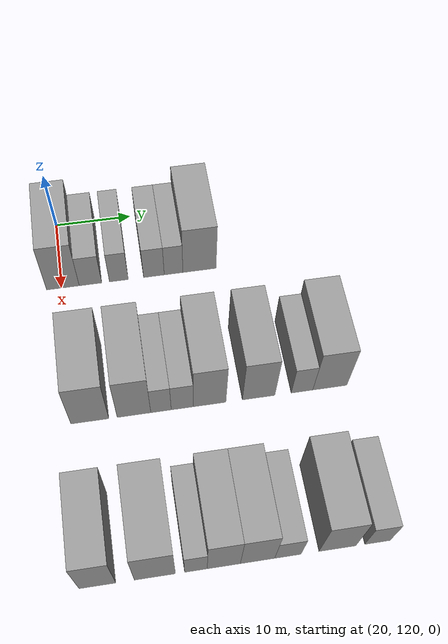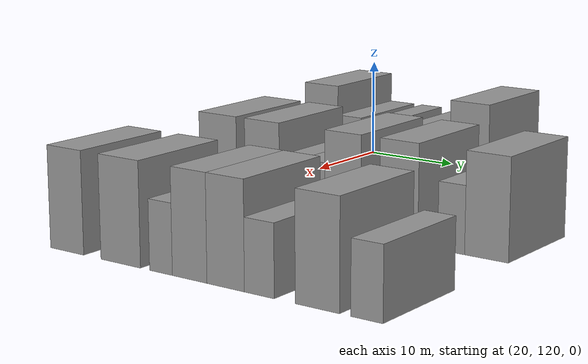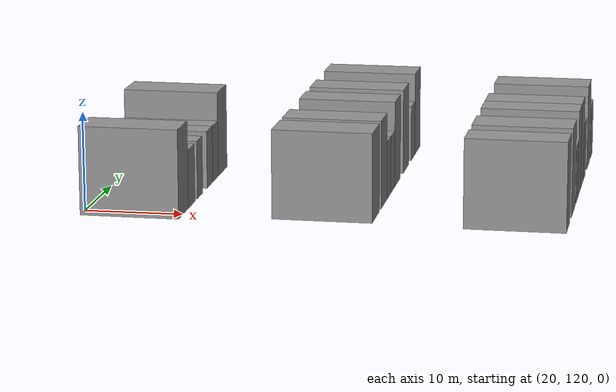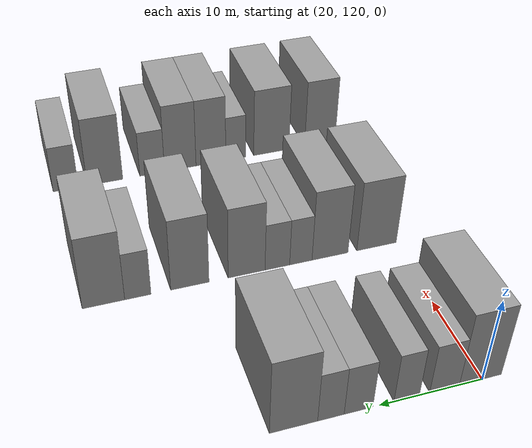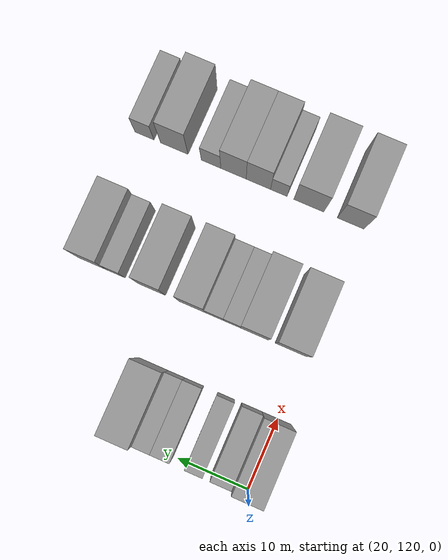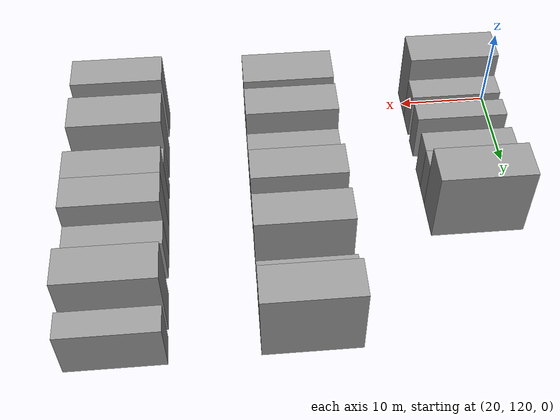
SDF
<sdf version="1.6">
 <world name="default">
  <model name="building_90">
   <static>1</static>
   <pose>25.0000 120.1816 0 0.000000 0.000000 0.000000</pose>
   <link name="link">
    <pose>0 0 4.50 0 0 0</pose>
    <collision name="collision"><geometry><box><size>10.0000 4.1920 9.0000</size></box></geometry></collision>
    <visual name="visual">
     <cast_shadows>0</cast_shadows>
     <geometry><box><size>10.0000 4.1920 9.0000</size></box></geometry>
     <material>
      <script>
       <uri>model://grey_wall/materials/scripts</uri>
       <uri>model://grey_wall/materials/textures</uri>
       <name>vrc/grey_wall</name>
      </script>
     </material>
    </visual>
   </link>
  </model>
  <model name="building_91">
   <static>1</static>
   <pose>25.0000 123.7352 0 0.000000 0.000000 0.000000</pose>
   <link name="link">
    <pose>0 0 3.00 0 0 0</pose>
    <collision name="collision"><geometry><box><size>10.0000 2.9152 6.0000</size></box></geometry></collision>
    <visual name="visual">
     <cast_shadows>0</cast_shadows>
     <geometry><box><size>10.0000 2.9152 6.0000</size></box></geometry>
     <material>
      <script>
       <uri>model://grey_wall/materials/scripts</uri>
       <uri>model://grey_wall/materials/textures</uri>
       <name>vrc/grey_wall</name>
      </script>
     </material>
    </visual>
   </link>
  </model>
  <model name="building_92">
   <static>1</static>
   <pose>25.0000 127.4188 0 0.000000 0.000000 0.000000</pose>
   <link name="link">
    <pose>0 0 3.00 0 0 0</pose>
    <collision name="collision"><geometry><box><size>10.0000 2.4520 6.0000</size></box></geometry></collision>
    <visual name="visual">
     <cast_shadows>0</cast_shadows>
     <geometry><box><size>10.0000 2.4520 6.0000</size></box></geometry>
     <material>
      <script>
       <uri>model://grey_wall/materials/scripts</uri>
       <uri>model://grey_wall/materials/textures</uri>
       <name>vrc/grey_wall</name>
      </script>
     </material>
    </visual>
   </link>
  </model>
  <model name="building_93">
   <static>1</static>
   <pose>25.0000 131.9946 0 0.000000 0.000000 0.000000</pose>
   <link name="link">
    <pose>0 0 3.00 0 0 0</pose>
    <collision name="collision"><geometry><box><size>10.0000 2.6996 6.0000</size></box></geometry></collision>
    <visual name="visual">
     <cast_shadows>0</cast_shadows>
     <geometry><box><size>10.0000 2.6996 6.0000</size></box></geometry>
     <material>
      <script>
       <uri>model://grey_wall/materials/scripts</uri>
       <uri>model://grey_wall/materials/textures</uri>
       <name>vrc/grey_wall</name>
      </script>
     </material>
    </visual>
   </link>
  </model>
  <model name="building_94">
   <static>1</static>
   <pose>25.0000 134.5674 0 0.000000 0.000000 0.000000</pose>
   <link name="link">
    <pose>0 0 3.00 0 0 0</pose>
    <collision name="collision"><geometry><box><size>10.0000 2.4461 6.0000</size></box></geometry></collision>
    <visual name="visual">
     <cast_shadows>0</cast_shadows>
     <geometry><box><size>10.0000 2.4461 6.0000</size></box></geometry>
     <material>
      <script>
       <uri>model://grey_wall/materials/scripts</uri>
       <uri>model://grey_wall/materials/textures</uri>
       <name>vrc/grey_wall</name>
      </script>
     </material>
    </visual>
   </link>
  </model>
  <model name="building_95">
   <static>1</static>
   <pose>25.0000 137.9759 0 0.000000 0.000000 0.000000</pose>
   <link name="link">
    <pose>0 0 4.50 0 0 0</pose>
    <collision name="collision"><geometry><box><size>10.0000 4.3709 9.0000</size></box></geometry></collision>
    <visual name="visual">
     <cast_shadows>0</cast_shadows>
     <geometry><box><size>10.0000 4.3709 9.0000</size></box></geometry>
     <material>
      <script>
       <uri>model://grey_wall/materials/scripts</uri>
       <uri>model://grey_wall/materials/textures</uri>
       <name>vrc/grey_wall</name>
      </script>
     </material>
    </visual>
   </link>
  </model>
  <model name="building_202">
   <static>1</static>
   <pose>44.0000 121.9959 0 0.000000 0.000000 0.000000</pose>
   <link name="link">
    <pose>0 0 4.50 0 0 0</pose>
    <collision name="collision"><geometry><box><size>10.0000 4.4814 9.0000</size></box></geometry></collision>
    <visual name="visual">
     <cast_shadows>0</cast_shadows>
     <geometry><box><size>10.0000 4.4814 9.0000</size></box></geometry>
     <material>
      <script>
       <uri>model://grey_wall/materials/scripts</uri>
       <uri>model://grey_wall/materials/textures</uri>
       <name>vrc/grey_wall</name>
      </script>
     </material>
    </visual>
   </link>
  </model>
  <model name="building_203">
   <static>1</static>
   <pose>44.0000 127.2355 0 0.000000 0.000000 0.000000</pose>
   <link name="link">
    <pose>0 0 4.50 0 0 0</pose>
    <collision name="collision"><geometry><box><size>10.0000 3.9977 9.0000</size></box></geometry></collision>
    <visual name="visual">
     <cast_shadows>0</cast_shadows>
     <geometry><box><size>10.0000 3.9977 9.0000</size></box></geometry>
     <material>
      <script>
       <uri>model://grey_wall/materials/scripts</uri>
       <uri>model://grey_wall/materials/textures</uri>
       <name>vrc/grey_wall</name>
      </script>
     </material>
    </visual>
   </link>
  </model>
  <model name="building_204">
   <static>1</static>
   <pose>44.0000 130.4550 0 0.000000 0.000000 0.000000</pose>
   <link name="link">
    <pose>0 0 3.00 0 0 0</pose>
    <collision name="collision"><geometry><box><size>10.0000 2.4414 6.0000</size></box></geometry></collision>
    <visual name="visual">
     <cast_shadows>0</cast_shadows>
     <geometry><box><size>10.0000 2.4414 6.0000</size></box></geometry>
     <material>
      <script>
       <uri>model://grey_wall/materials/scripts</uri>
       <uri>model://grey_wall/materials/textures</uri>
       <name>vrc/grey_wall</name>
      </script>
     </material>
    </visual>
   </link>
  </model>
  <model name="building_205">
   <static>1</static>
   <pose>44.0000 133.0089 0 0.000000 0.000000 0.000000</pose>
   <link name="link">
    <pose>0 0 3.00 0 0 0</pose>
    <collision name="collision"><geometry><box><size>10.0000 2.6664 6.0000</size></box></geometry></collision>
    <visual name="visual">
     <cast_shadows>0</cast_shadows>
     <geometry><box><size>10.0000 2.6664 6.0000</size></box></geometry>
     <material>
      <script>
       <uri>model://grey_wall/materials/scripts</uri>
       <uri>model://grey_wall/materials/textures</uri>
       <name>vrc/grey_wall</name>
      </script>
     </material>
    </visual>
   </link>
  </model>
  <model name="building_206">
   <static>1</static>
   <pose>44.0000 136.3009 0 0.000000 0.000000 0.000000</pose>
   <link name="link">
    <pose>0 0 4.50 0 0 0</pose>
    <collision name="collision"><geometry><box><size>10.0000 3.9175 9.0000</size></box></geometry></collision>
    <visual name="visual">
     <cast_shadows>0</cast_shadows>
     <geometry><box><size>10.0000 3.9175 9.0000</size></box></geometry>
     <material>
      <script>
       <uri>model://grey_wall/materials/scripts</uri>
       <uri>model://grey_wall/materials/textures</uri>
       <name>vrc/grey_wall</name>
      </script>
     </material>
    </visual>
   </link>
  </model>
  <model name="building_207">
   <static>1</static>
   <pose>44.0000 142.2390 0 0.000000 0.000000 0.000000</pose>
   <link name="link">
    <pose>0 0 4.50 0 0 0</pose>
    <collision name="collision"><geometry><box><size>10.0000 3.9587 9.0000</size></box></geometry></collision>
    <visual name="visual">
     <cast_shadows>0</cast_shadows>
     <geometry><box><size>10.0000 3.9587 9.0000</size></box></geometry>
     <material>
      <script>
       <uri>model://grey_wall/materials/scripts</uri>
       <uri>model://grey_wall/materials/textures</uri>
       <name>vrc/grey_wall</name>
      </script>
     </material>
    </visual>
   </link>
  </model>
  <model name="building_208">
   <static>1</static>
   <pose>44.0000 147.5408 0 0.000000 0.000000 0.000000</pose>
   <link name="link">
    <pose>0 0 3.00 0 0 0</pose>
    <collision name="collision"><geometry><box><size>10.0000 2.6449 6.0000</size></box></geometry></collision>
    <visual name="visual">
     <cast_shadows>0</cast_shadows>
     <geometry><box><size>10.0000 2.6449 6.0000</size></box></geometry>
     <material>
      <script>
       <uri>model://grey_wall/materials/scripts</uri>
       <uri>model://grey_wall/materials/textures</uri>
       <name>vrc/grey_wall</name>
      </script>
     </material>
    </visual>
   </link>
  </model>
  <model name="building_209">
   <static>1</static>
   <pose>44.0000 150.9653 0 0.000000 0.000000 0.000000</pose>
   <link name="link">
    <pose>0 0 4.50 0 0 0</pose>
    <collision name="collision"><geometry><box><size>10.0000 4.2041 9.0000</size></box></geometry></collision>
    <visual name="visual">
     <cast_shadows>0</cast_shadows>
     <geometry><box><size>10.0000 4.2041 9.0000</size></box></geometry>
     <material>
      <script>
       <uri>model://grey_wall/materials/scripts</uri>
       <uri>model://grey_wall/materials/textures</uri>
       <name>vrc/grey_wall</name>
      </script>
     </material>
    </visual>
   </link>
  </model>
  <model name="building_321">
   <static>1</static>
   <pose>63.0000 121.1453 0 0.000000 0.000000 0.000000</pose>
   <link name="link">
    <pose>0 0 4.50 0 0 0</pose>
    <collision name="collision"><geometry><box><size>10.0000 3.9242 9.0000</size></box></geometry></collision>
    <visual name="visual">
     <cast_shadows>0</cast_shadows>
     <geometry><box><size>10.0000 3.9242 9.0000</size></box></geometry>
     <material>
      <script>
       <uri>model://grey_wall/materials/scripts</uri>
       <uri>model://grey_wall/materials/textures</uri>
       <name>vrc/grey_wall</name>
      </script>
     </material>
    </visual>
   </link>
  </model>
  <model name="building_322">
   <static>1</static>
   <pose>63.0000 127.3285 0 0.000000 0.000000 0.000000</pose>
   <link name="link">
    <pose>0 0 4.50 0 0 0</pose>
    <collision name="collision"><geometry><box><size>10.0000 4.4423 9.0000</size></box></geometry></collision>
    <visual name="visual">
     <cast_shadows>0</cast_shadows>
     <geometry><box><size>10.0000 4.4423 9.0000</size></box></geometry>
     <material>
      <script>
       <uri>model://grey_wall/materials/scripts</uri>
       <uri>model://grey_wall/materials/textures</uri>
       <name>vrc/grey_wall</name>
      </script>
     </material>
    </visual>
   </link>
  </model>
  <model name="building_323">
   <static>1</static>
   <pose>63.0000 131.7762 0 0.000000 0.000000 0.000000</pose>
   <link name="link">
    <pose>0 0 3.00 0 0 0</pose>
    <collision name="collision"><geometry><box><size>10.0000 2.4531 6.0000</size></box></geometry></collision>
    <visual name="visual">
     <cast_shadows>0</cast_shadows>
     <geometry><box><size>10.0000 2.4531 6.0000</size></box></geometry>
     <material>
      <script>
       <uri>model://grey_wall/materials/scripts</uri>
       <uri>model://grey_wall/materials/textures</uri>
       <name>vrc/grey_wall</name>
      </script>
     </material>
    </visual>
   </link>
  </model>
  <model name="building_324">
   <static>1</static>
   <pose>63.0000 134.8169 0 0.000000 0.000000 0.000000</pose>
   <link name="link">
    <pose>0 0 4.50 0 0 0</pose>
    <collision name="collision"><geometry><box><size>10.0000 3.6283 9.0000</size></box></geometry></collision>
    <visual name="visual">
     <cast_shadows>0</cast_shadows>
     <geometry><box><size>10.0000 3.6283 9.0000</size></box></geometry>
     <material>
      <script>
       <uri>model://grey_wall/materials/scripts</uri>
       <uri>model://grey_wall/materials/textures</uri>
       <name>vrc/grey_wall</name>
      </script>
     </material>
    </visual>
   </link>
  </model>
  <model name="building_325">
   <static>1</static>
   <pose>63.0000 138.5245 0 0.000000 0.000000 0.000000</pose>
   <link name="link">
    <pose>0 0 4.50 0 0 0</pose>
    <collision name="collision"><geometry><box><size>10.0000 3.7868 9.0000</size></box></geometry></collision>
    <visual name="visual">
     <cast_shadows>0</cast_shadows>
     <geometry><box><size>10.0000 3.7868 9.0000</size></box></geometry>
     <material>
      <script>
       <uri>model://grey_wall/materials/scripts</uri>
       <uri>model://grey_wall/materials/textures</uri>
       <name>vrc/grey_wall</name>
      </script>
     </material>
    </visual>
   </link>
  </model>
  <model name="building_326">
   <static>1</static>
   <pose>63.0000 141.8773 0 0.000000 0.000000 0.000000</pose>
   <link name="link">
    <pose>0 0 3.00 0 0 0</pose>
    <collision name="collision"><geometry><box><size>10.0000 2.9190 6.0000</size></box></geometry></collision>
    <visual name="visual">
     <cast_shadows>0</cast_shadows>
     <geometry><box><size>10.0000 2.9190 6.0000</size></box></geometry>
     <material>
      <script>
       <uri>model://grey_wall/materials/scripts</uri>
       <uri>model://grey_wall/materials/textures</uri>
       <name>vrc/grey_wall</name>
      </script>
     </material>
    </visual>
   </link>
  </model>
  <model name="building_327">
   <static>1</static>
   <pose>63.0000 147.3995 0 0.000000 0.000000 0.000000</pose>
   <link name="link">
    <pose>0 0 4.50 0 0 0</pose>
    <collision name="collision"><geometry><box><size>10.0000 4.1253 9.0000</size></box></geometry></collision>
    <visual name="visual">
     <cast_shadows>0</cast_shadows>
     <geometry><box><size>10.0000 4.1253 9.0000</size></box></geometry>
     <material>
      <script>
       <uri>model://grey_wall/materials/scripts</uri>
       <uri>model://grey_wall/materials/textures</uri>
       <name>vrc/grey_wall</name>
      </script>
     </material>
    </visual>
   </link>
  </model>
  <model name="building_328">
   <static>1</static>
   <pose>63.0000 151.8946 0 0.000000 0.000000 0.000000</pose>
   <link name="link">
    <pose>0 0 3.00 0 0 0</pose>
    <collision name="collision"><geometry><box><size>10.0000 2.8649 6.0000</size></box></geometry></collision>
    <visual name="visual">
     <cast_shadows>0</cast_shadows>
     <geometry><box><size>10.0000 2.8649 6.0000</size></box></geometry>
     <material>
      <script>
       <uri>model://grey_wall/materials/scripts</uri>
       <uri>model://grey_wall/materials/textures</uri>
       <name>vrc/grey_wall</name>
      </script>
     </material>
    </visual>
   </link>
  </model>
 </world>
</sdf>
